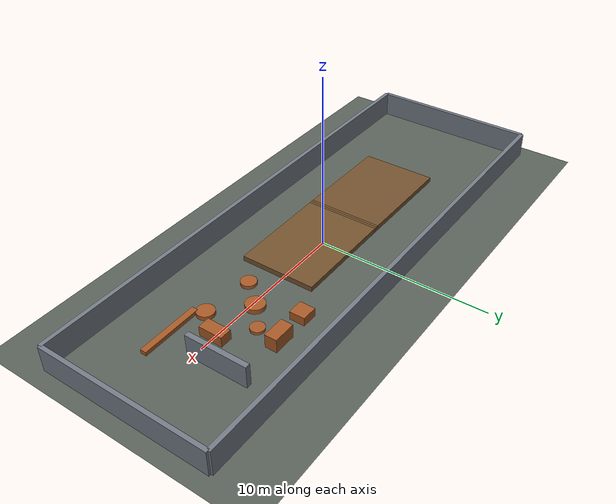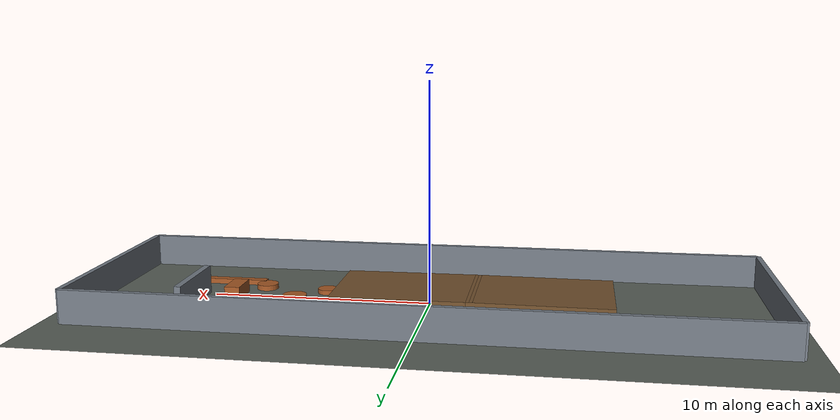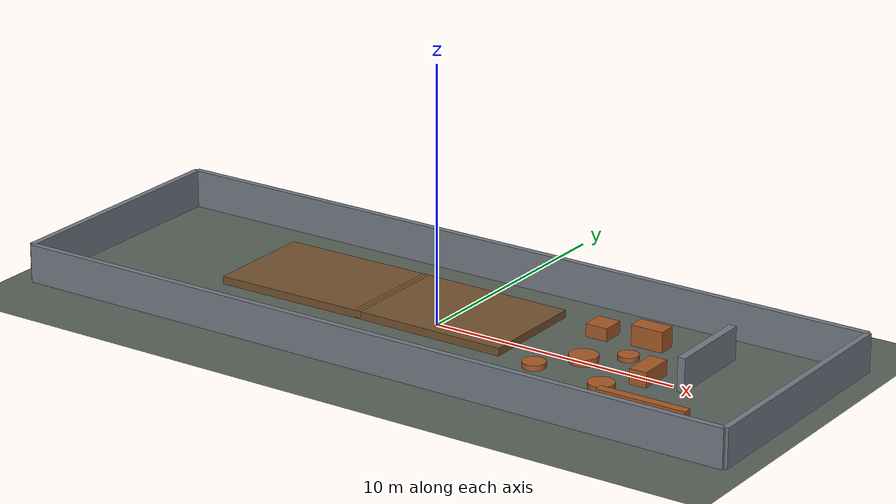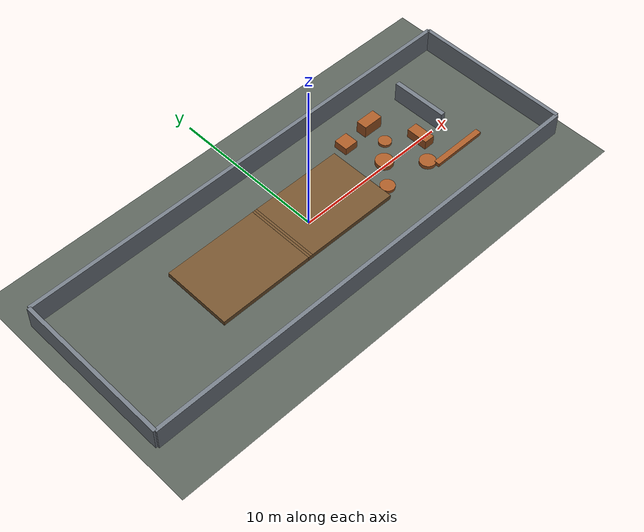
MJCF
<mujoco model="wego terrain course">
  <!-- Angles are radians because b2.xml sets the shared compiler convention. -->
  <option timestep="0.002" gravity="0 0 -9.81"/>

  <visual>
    <headlight diffuse="0.7 0.7 0.7" ambient="0.3 0.3 0.3" specular="0.2 0.2 0.2"/>
    <rgba haze="0.15 0.25 0.35 1"/>
    <global azimuth="135" elevation="-20"/>
  </visual>

  <asset>
    <texture name="course_skybox" type="skybox" builtin="gradient"
             rgb1="0.3 0.5 0.7" rgb2="0.05 0.05 0.08" width="512" height="512"/>
    <material name="course_ground" rgba="0.35 0.38 0.35 1"/>
    <material name="course_hill" rgba="0.45 0.32 0.18 1"/>
    <material name="course_obstacle" rgba="0.65 0.35 0.15 1"/>
    <material name="course_wall" rgba="0.45 0.48 0.52 1"/>
  </asset>

  <default>
    <default class="course">
      <geom group="0" condim="3" mass="0" density="0" friction="0.9 0.005 0.0001"/>
    </default>
  </default>

  <worldbody>
    <light pos="0 0 12" dir="0 0 -1" directional="true"/>

    <geom name="course_ground" type="plane" size="16 8 0.1"
          material="course_ground" friction="1.2 0.01 0.001" class="course"/>

    <!-- Two 15-degree ramps. Their top edges meet at the crest, and the lower
         top edges are flush with the ground plane (angles are radians). -->
    <geom name="hill_up" type="box" size="3.15 2.2 0.15" pos="-5.0 0 0.669"
          euler="0 -0.261799388 0" material="course_hill"
          friction="1.3 0.01 0.001" class="course"/>
    <geom name="hill_down" type="box" size="3.15 2.2 0.15" pos="1.0 0 0.669"
          euler="0 0.261799388 0" material="course_hill"
          friction="1.3 0.01 0.001" class="course"/>

    <geom name="bump_1" type="cylinder" size="0.45 0.12" pos="5.0 -1.2 0.06"
          material="course_obstacle" class="course"/>
    <geom name="bump_2" type="cylinder" size="0.55 0.16" pos="6.2 0.2 0.08"
          material="course_obstacle" class="course"/>
    <geom name="bump_3" type="cylinder" size="0.40 0.10" pos="7.4 1.3 0.05"
          material="course_obstacle" class="course"/>
    <geom name="bump_4" type="cylinder" size="0.50 0.14" pos="8.0 -1.5 0.07"
          material="course_obstacle" class="course"/>

    <geom name="obstacle_box_1" type="box" size="0.45 0.45 0.25" pos="5.5 2.6 0.25"
          material="course_obstacle" class="course"/>
    <geom name="obstacle_box_2" type="box" size="0.65 0.35 0.40" pos="7.5 2.7 0.40"
          material="course_obstacle" class="course"/>
    <geom name="obstacle_box_3" type="box" size="0.35 0.70 0.30" pos="9.0 0.0 0.30"
          material="course_obstacle" class="course"/>
    <geom name="curb" type="box" size="1.8 0.18 0.12" pos="10.0 -2.0 0.12"
          euler="0 0 0.261799388" material="course_obstacle" class="course"/>

    <geom name="wall_left" type="box" size="15.0 0.12 0.75" pos="0 5.0 0.75"
          material="course_wall" class="course"/>
    <geom name="wall_right" type="box" size="15.0 0.12 0.75" pos="0 -5.0 0.75"
          material="course_wall" class="course"/>
    <geom name="wall_back" type="box" size="0.12 5.0 0.75" pos="-15.0 0 0.75"
          material="course_wall" class="course"/>
    <geom name="wall_front" type="box" size="0.12 5.0 0.75" pos="15.0 0 0.75"
          material="course_wall" class="course"/>
    <geom name="internal_wall" type="box" size="0.15 1.8 0.65" pos="10.5 1.5 0.65"
          euler="0 0 0.34906585" material="course_wall" class="course"/>
  </worldbody>
</mujoco>
